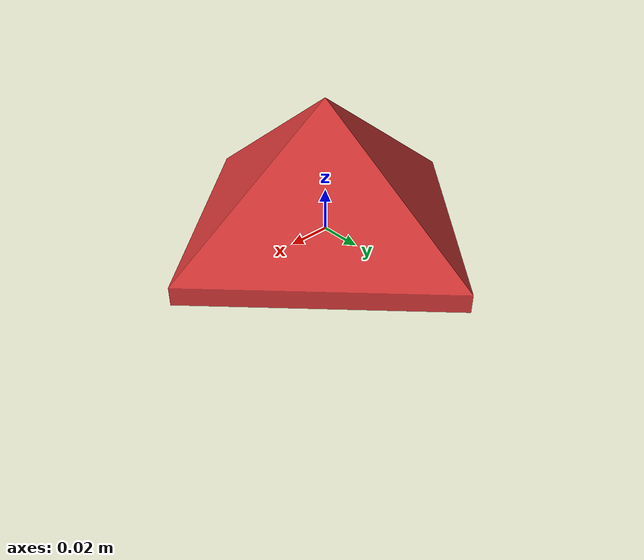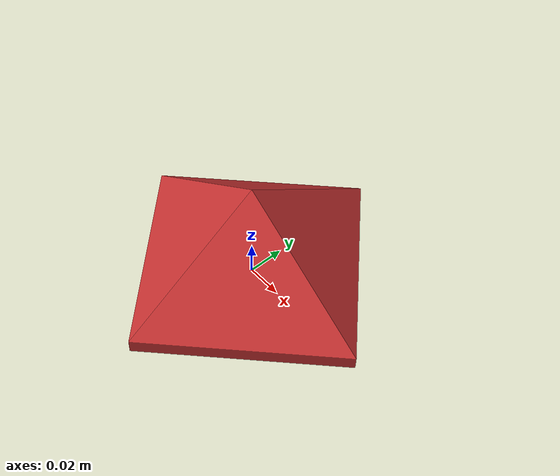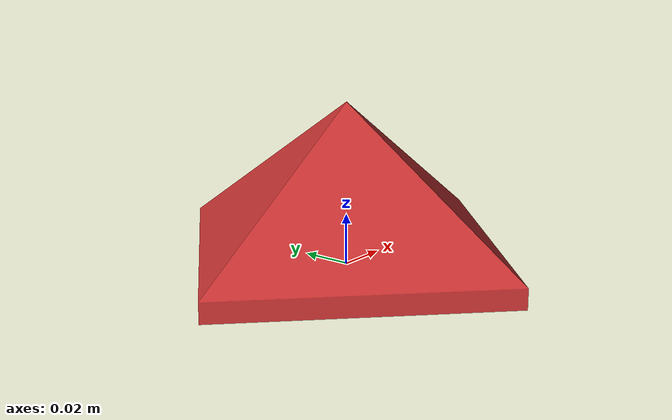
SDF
<?xml version="1.0"?>
<sdf version="1.7">
  <model name="hat_variant">
    <link name="hat_variant_link">
      <inertial>
        <mass>0.5</mass>
        <inertia>
          <ixx>0.010</ixx>
          <iyy>0.010</iyy>
          <izz>0.012</izz>
          <ixy>0.0</ixy>
          <ixz>0.0</ixz>
          <iyz>0.0</iyz>
        </inertia>
      </inertial>
      <visual name="hat_variant_visual">
        <geometry>
          <mesh>
            <uri>hat.obj</uri>
            <scale>0.08 0.08 0.08</scale>
          </mesh>
        </geometry>
        <material>
          <diffuse>0.8 0.2 0.2 1</diffuse>
          <ambient>0.3 0.1 0.1 1</ambient>
        </material>
      </visual>
    </link>
  </model>
</sdf>
